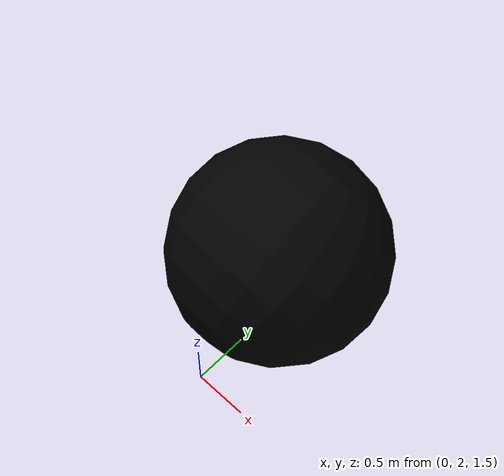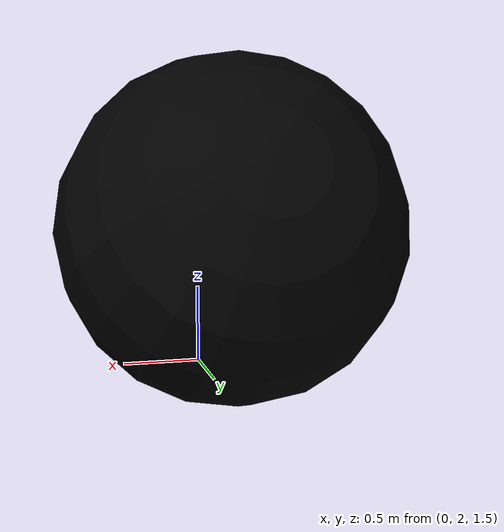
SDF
<?xml version="1.0" ?>
<sdf version="1.8">
    <model name='ball'>
      <pose>0 3 2.5 90 0 0</pose>
      <link name='box_link'>
        <inertial>
          <inertia>
            <ixx>0.4</ixx>
            <ixy>0</ixy>
            <ixz>0</ixz>
            <iyy>0.4</iyy>
            <iyz>0</iyz>
            <izz>0.4</izz>
          </inertia>
          <mass>1</mass>
          <pose>0 0 0 0 0 0</pose>
        </inertial>
        <collision name='ball_collision'>
          <geometry>
            <sphere>
              <radius>1</radius>
            </sphere>
          </geometry>
          <surface>
            <friction>
              <ode/>
            </friction>
            <bounce/>
            <contact/>
          </surface>
        </collision>
        <visual name='ball_visual'>
          <geometry>
            <sphere>
              <radius>1</radius>
            </sphere>
          </geometry>
          <material>
            <ambient>0 0 0 1</ambient>
            <diffuse>0 0 0 1</diffuse>
            <specular>0 0 0 1</specular>
          </material>
        </visual>
        <pose>0 0 0 0 0 0</pose>
        <enable_wind>false</enable_wind>
      </link>
      <static>false</static>
      <self_collide>false</self_collide>
    </model>
</sdf>
